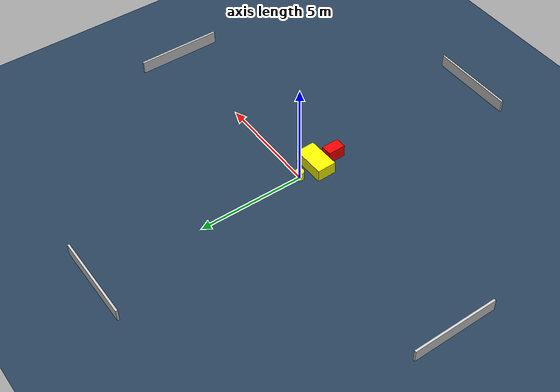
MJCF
<?xml version="1.0" ?>
<mujoco model="generated_environment">
  <option timestep="0.01" integrator="RK4" cone="elliptic"/>
  <default>
    <geom density="1"/>
  </default>
  <asset>
    <texture builtin="gradient" height="3072" name="skybox" rgb1="0.3 0.5 0.7" rgb2="0 0 0" type="skybox" width="512"/>
    <texture builtin="checker" height="300" name="groundplane" rgb1="0.2 0.3 0.4" rgb2="0.1 0.2 0.3" type="2d" width="300"/>
    <material name="groundplane" reflectance="0.2" texrepeat="5 5" texture="groundplane"/>
  </asset>
  <worldbody>
    <light dir="0 0 -1" directional="true" pos="0 0 1.5"/>
    <geom condim="3" friction="0.5 0.005 0.001" material="groundplane" name="floor" pos="0 0 0" size="0 0 0.05" type="plane"/>
    <body name="walls">
      <geom name="wall_1" condim="4" pos="-10.0 0.0 0.3" rgba="0.800000011920929 0.800000011920929 0.800000011920929 1.0" size="0.05 2.0 0.3" type="box"/>
      <geom name="wall_2" condim="4" pos="10.0 0.0 0.3" rgba="0.800000011920929 0.800000011920929 0.800000011920929 1.0" size="0.05 2.0 0.3" type="box"/>
      <geom name="wall_3" condim="4" pos="0.0 -10.0 0.3" rgba="0.800000011920929 0.800000011920929 0.800000011920929 1.0" size="2.0 0.05 0.3" type="box"/>
      <geom name="wall_4" condim="4" pos="0.0 10.0 0.3" rgba="0.800000011920929 0.800000011920929 0.800000011920929 1.0" size="2.0 0.05 0.3" type="box"/>
    </body>
    <body name="robot">
      <joint name="joint_x" type="slide" pos="0 0 0" axis="1 0 0"/>
      <joint name="joint_y" type="slide" pos="0 0 0" axis="0 1 0"/>
      <geom name="robot" type="cylinder" pos="0.0 0.0 0.2" size="0.2 0.2 0.0" mass="5.0" friction="1.0 0.005 0.0001" condim="4" rgba="1.0 1.0 0.0 1.0"/>
    </body>
    <body name="obstacle_1_movable">
      <geom name="obstacle_1_movable" condim="4" pos="0.1361820829128443 -0.963313927968982 0.3" euler="0 0 181.37582632346408" friction="0.0 0.005 0.001" rgba="1.0 1.0 0.0 1.0" size="0.7806206489003646 0.4546741986446915 0.3" type="box" mass="0.1"/>
      <joint type="free"/>
    </body>
    <body name="obstacle_2_static">
      <geom name="obstacle_2_static" condim="4" pos="0.19506395982955785 -1.9630637502157864 0.3" euler="0 0 180.7561630023455" friction="0.0 0.005 0.001" rgba="1.0 0.0 0.0 1.0" size="0.2589251191791612 0.41337137228734194 0.3" type="box"/>
    </body>
  </worldbody>
  <actuator>
    <motor name="actuator_x" joint="joint_x" gear="1" ctrlrange="-1 1"/>
    <motor name="actuator_y" joint="joint_y" gear="1" ctrlrange="-1 1"/>
  </actuator>
</mujoco>
